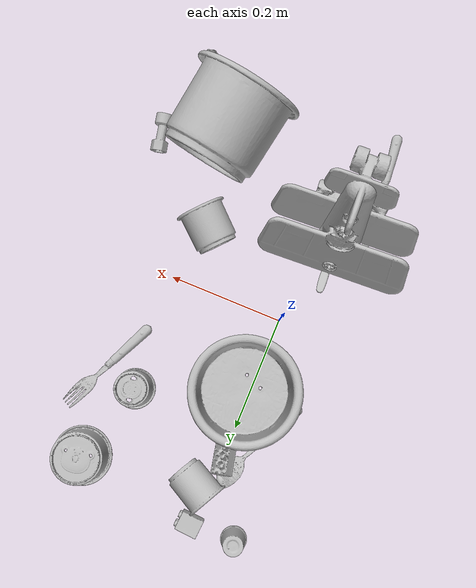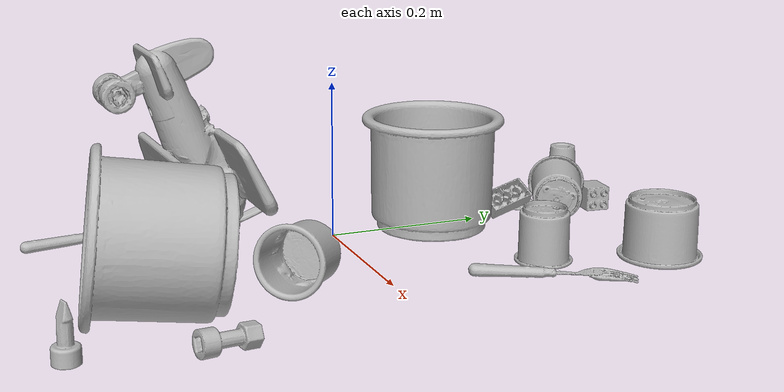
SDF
<sdf version="1.4">
  <world name="default">
    <light name="light1" type="point">
      <pose>0 0 1 0 0 0</pose>
      <diffuse>3 3 3 1</diffuse>
      <specular>3 3 3 1</specular>
    </light>
    <light name="light2" type="point">
      <pose>0 0.5 2 0 0 0</pose>
      <diffuse>1 1 1 1</diffuse>
      <specular>1 1 1 1</specular>
    </light>
    <light name="light3" type="point">
      <pose>0 0.5 2 0 0 0</pose>
      <diffuse>3 3 3 1</diffuse>
      <specular>3 3 3 1</specular>
    </light>
    <scene>
      <ambient>0.7 0.7 0.7</ambient>
    </scene>
    <model name="cup1">
      <link name="link_cup1">
        <collision name="default">
          <geometry>
            <mesh>
              <uri>model://d_cups/collision_meshes/collision.obj</uri>
              <scale>1.0 1.0 1.0</scale>
            </mesh>
          </geometry>
          <surface>
            <friction>
              <ode>
                <mu>0.5</mu>
                <mu2>0.5</mu2>
              </ode>
            </friction>
          <contact>
        <ode>
            <max_vel>0</max_vel>
            <min_depth>0.0001</min_depth>
            <kp>1e8</kp>
        </ode>
    </contact></surface>
        </collision>
        <visual name="default">
          <geometry>
            <mesh>
              <uri>model://d_cups/visual_meshes/visual.dae</uri>
              <scale>1.0 1.0 1.0</scale>
            </mesh>
          </geometry>
        </visual>
        <inertial>
          <mass>0.02583918906748295</mass>
          <pose>0.0008068039314821362 0.001911739120259881 -0.0022666507866233587 0.24011637128749466 -0.2471028358176743 0.5942765290496752</pose>
          <inertia>
            <ixx>2.1633481e-05</ixx>
            <iyy>2.1570875e-05</iyy>
            <izz>1.9581978e-05</izz>
            <ixy>0</ixy>
            <ixz>0</ixz>
            <iyz>0</iyz>
          </inertia>
        </inertial>
      </link>
      <pose>0.18557235598564148 0.20285873115062714 0.03448925167322159 -3.14157864653311 -5.3073362375117196e-05 2.3318231060792147</pose>
    </model>
    <model name="silverware1">
      <link name="link_silverware1">
        <collision name="default">
          <geometry>
            <mesh>
              <uri>model://fork/collision_meshes/collision.obj</uri>
              <scale>1.0 1.0 1.0</scale>
            </mesh>
          </geometry>
          <surface>
            <friction>
              <ode>
                <mu>0.5</mu>
                <mu2>0.5</mu2>
              </ode>
            </friction>
          <contact>
        <ode>
            <max_vel>0</max_vel>
            <min_depth>0.0001</min_depth>
            <kp>1e8</kp>
        </ode>
    </contact></surface>
        </collision>
        <visual name="default">
          <geometry>
            <mesh>
              <uri>model://fork/visual_meshes/visual.dae</uri>
              <scale>1.0 1.0 1.0</scale>
            </mesh>
          </geometry>
        </visual>
        <inertial>
          <mass>0.019409121945500374</mass>
          <pose>-0.02957003004848957 0.00046588227269239724 0.0003218860365450382 -0.013551247621251511 -0.010977829980421018 0.014453895491116085</pose>
          <inertia>
            <ixx>6.8039935e-07</ixx>
            <iyy>5.0671635e-05</iyy>
            <izz>5.097597e-05</izz>
            <ixy>0</ixy>
            <ixz>0</ixz>
            <iyz>0</iyz>
          </inertia>
        </inertial>
      </link>
      <pose>0.24384605884552002 0.18335309624671936 0.007446617353707552 -3.0635110475961302 0.0028356781565262055 1.13144977013834</pose>
    </model>
    <model name="cup2">
      <link name="link_cup2">
        <collision name="default">
          <geometry>
            <mesh>
              <uri>model://e_cups/collision_meshes/collision.obj</uri>
              <scale>1.0 1.0 1.0</scale>
            </mesh>
          </geometry>
          <surface>
            <friction>
              <ode>
                <mu>0.5</mu>
                <mu2>0.5</mu2>
              </ode>
            </friction>
          <contact>
        <ode>
            <max_vel>0</max_vel>
            <min_depth>0.0001</min_depth>
            <kp>1e8</kp>
        </ode>
    </contact></surface>
        </collision>
        <visual name="default">
          <geometry>
            <mesh>
              <uri>model://e_cups/visual_meshes/visual.dae</uri>
              <scale>1.0 1.0 1.0</scale>
            </mesh>
          </geometry>
        </visual>
        <inertial>
          <mass>0.044056184589862823</mass>
          <pose>0.0011355748865753412 0.0028797839768230915 -0.0038829699624329805 0.6952404811842238 0.0876797234541652 -0.5235249298074676</pose>
          <inertia>
            <ixx>3.8846523e-05</ixx>
            <iyy>4.060018e-05</iyy>
            <izz>3.714177e-05</izz>
            <ixy>0</ixy>
            <ixz>0</ixz>
            <iyz>0</iyz>
          </inertia>
        </inertial>
      </link>
      <pose>0.027495186775922775 0.3116854727268219 0.03501777723431587 -1.4673909279766877 0.6124945886056361 1.1472949279573734</pose>
    </model>
    <model name="silverware2">
      <link name="link_silverware2">
        <collision name="default">
          <geometry>
            <mesh>
              <uri>model://knife/collision_meshes/collision.obj</uri>
              <scale>1.0 1.0 1.0</scale>
            </mesh>
          </geometry>
          <surface>
            <friction>
              <ode>
                <mu>0.5</mu>
                <mu2>0.5</mu2>
              </ode>
            </friction>
          <contact>
        <ode>
            <max_vel>0</max_vel>
            <min_depth>0.0001</min_depth>
            <kp>1e8</kp>
        </ode>
    </contact></surface>
        </collision>
        <visual name="default">
          <geometry>
            <mesh>
              <uri>model://knife/visual_meshes/visual.dae</uri>
              <scale>1.0 1.0 1.0</scale>
            </mesh>
          </geometry>
        </visual>
        <inertial>
          <mass>0.018338654190301895</mass>
          <pose>-0.02378525212407112 0.00152751209679991 5.062017953605391e-05 0.07305878484845407 0.017248414361503102 -0.007409825003193847</pose>
          <inertia>
            <ixx>5.2052525e-07</ixx>
            <iyy>7.045415e-05</iyy>
            <izz>7.062178e-05</izz>
            <ixy>0</ixy>
            <ixz>0</ixz>
            <iyz>0</iyz>
          </inertia>
        </inertial>
      </link>
      <pose>-0.0800759568810463 -0.27602049708366394 0.007938220165669918 0.00021743765102707395 -0.01430731761300522 1.6516584159312562</pose>
    </model>
    <model name="cup3">
      <link name="link_cup3">
        <collision name="default">
          <geometry>
            <mesh>
              <uri>model://g_cups/collision_meshes/collision.obj</uri>
              <scale>1.0 1.0 1.0</scale>
            </mesh>
          </geometry>
          <surface>
            <friction>
              <ode>
                <mu>0.5</mu>
                <mu2>0.5</mu2>
              </ode>
            </friction>
          <contact>
        <ode>
            <max_vel>0</max_vel>
            <min_depth>0.0001</min_depth>
            <kp>1e8</kp>
        </ode>
    </contact></surface>
        </collision>
        <visual name="default">
          <geometry>
            <mesh>
              <uri>model://g_cups/visual_meshes/visual.dae</uri>
              <scale>1.0 1.0 1.0</scale>
            </mesh>
          </geometry>
        </visual>
        <inertial>
          <mass>0.07798270881175995</mass>
          <pose>-0.0007946274126879871 -4.206407902529463e-05 -0.0021329382434487343 -0.21383467808934026 -0.31409923984197585 0.31123390815877217</pose>
          <inertia>
            <ixx>9.102333e-05</ixx>
            <iyy>9.0713715e-05</iyy>
            <izz>9.428446e-05</izz>
            <ixy>0</ixy>
            <ixz>0</ixz>
            <iyz>0</iyz>
          </inertia>
        </inertial>
      </link>
      <pose>0.1720704287290573 -0.10146889090538025 0.039847973734140396 -0.926930100308389 -1.3959805256339557 -2.9369764718682223</pose>
    </model>
    <model name="silverware3">
      <link name="link_silverware3">
        <collision name="default">
          <geometry>
            <mesh>
              <uri>model://spoon/collision_meshes/collision.obj</uri>
              <scale>1.0 1.0 1.0</scale>
            </mesh>
          </geometry>
          <surface>
            <friction>
              <ode>
                <mu>0.5</mu>
                <mu2>0.5</mu2>
              </ode>
            </friction>
          <contact>
        <ode>
            <max_vel>0</max_vel>
            <min_depth>0.0001</min_depth>
            <kp>1e8</kp>
        </ode>
    </contact></surface>
        </collision>
        <visual name="default">
          <geometry>
            <mesh>
              <uri>model://spoon/visual_meshes/visual.dae</uri>
              <scale>1.0 1.0 1.0</scale>
            </mesh>
          </geometry>
        </visual>
        <inertial>
          <mass>0.03767607361078262</mass>
          <pose>-0.005526314023882151 -0.00160341733135283 -0.0007271650829352438 0.035216427360727776 -0.03906582911385382 0.006150613897789847</pose>
          <inertia>
            <ixx>2.095604e-06</ixx>
            <iyy>0.00014335623</iyy>
            <izz>0.00014438969</izz>
            <ixy>0</ixy>
            <ixz>0</ixz>
            <iyz>0</iyz>
          </inertia>
        </inertial>
      </link>
      <pose>-0.045604586601257324 0.21176858246326447 0.01020105741918087 -2.7054434123352773 -0.06142757108397865 1.1108958564037439</pose>
    </model>
    <model name="cup4">
      <link name="link_cup4">
        <collision name="default">
          <geometry>
            <mesh>
              <uri>model://i_cups/collision_meshes/collision.obj</uri>
              <scale>2.0 2.0 2.0</scale>
            </mesh>
          </geometry>
          <surface>
            <friction>
              <ode>
                <mu>0.5</mu>
                <mu2>0.5</mu2>
              </ode>
            </friction>
          <contact>
        <ode>
            <max_vel>0</max_vel>
            <min_depth>0.0001</min_depth>
            <kp>1e8</kp>
        </ode>
    </contact></surface>
        </collision>
        <visual name="default">
          <geometry>
            <mesh>
              <uri>model://i_cups/visual_meshes/visual.dae</uri>
              <scale>2.0 2.0 2.0</scale>
            </mesh>
          </geometry>
        </visual>
        <inertial>
          <mass>0.5538490414619446</mass>
          <pose>0.00022480632469523698 0.00033594807609915733 -0.0017158057307824492 -0.028982964625507153 -0.039873324075769 -0.3459146585522926</pose>
          <inertia>
            <ixx>0.003067248</ixx>
            <iyy>0.003094273</iyy>
            <izz>0.0034281453</izz>
            <ixy>0</ixy>
            <ixz>0</ixz>
            <iyz>0</iyz>
          </inertia>
        </inertial>
      </link>
      <pose>0.20771099627017975 -0.2708621919155121 0.08939981460571289 1.446382776142131 -0.08482862671235127 -0.16279923762872991</pose>
    </model>
    <model name="cup41">
      <link name="link_cup41">
        <collision name="default">
          <geometry>
            <mesh>
              <uri>model://cup_small/collision_meshes/collision.obj</uri>
              <scale>1.0 1.0 1.0</scale>
            </mesh>
          </geometry>
          <surface>
            <friction>
              <ode>
                <mu>0.5</mu>
                <mu2>0.5</mu2>
              </ode>
            </friction>
          <contact>
        <ode>
            <max_vel>0</max_vel>
            <min_depth>0.0001</min_depth>
            <kp>1e8</kp>
        </ode>
    </contact></surface>
        </collision>
        <visual name="default">
          <geometry>
            <mesh>
              <uri>model://cup_small/visual_meshes/visual.dae</uri>
              <scale>1.0 1.0 1.0</scale>
            </mesh>
          </geometry>
        </visual>
        <inertial>
          <mass>0.014494861476123333</mass>
          <pose>0.000104824714071583 -0.0003377838584128767 -0.010742826387286186 -0.01149312034772668 -0.015280288652376739 -0.5058210166411498</pose>
          <inertia>
            <ixx>8.534352e-06</ixx>
            <iyy>8.578376e-06</iyy>
            <izz>3.853286e-06</izz>
            <ixy>0</ixy>
            <ixz>0</ixz>
            <iyz>0</iyz>
          </inertia>
        </inertial>
      </link>
      <pose>-0.06762420386075974 0.37478873133659363 0.03469981998205185 -3.132454021447195 0.008638533629744923 0.8562602707914495</pose>
    </model>
    <model name="cup5">
      <link name="link_cup5">
        <collision name="default">
          <geometry>
            <mesh>
              <uri>model://h_cups/collision_meshes/collision.obj</uri>
              <scale>2.0 2.0 2.0</scale>
            </mesh>
          </geometry>
          <surface>
            <friction>
              <ode>
                <mu>0.5</mu>
                <mu2>0.5</mu2>
              </ode>
            </friction>
          <contact>
        <ode>
            <max_vel>0</max_vel>
            <min_depth>0.0001</min_depth>
            <kp>1e8</kp>
        </ode>
    </contact></surface>
        </collision>
        <visual name="default">
          <geometry>
            <mesh>
              <uri>model://h_cups/visual_meshes/visual.dae</uri>
              <scale>2.0 2.0 2.0</scale>
            </mesh>
          </geometry>
        </visual>
        <inertial>
          <mass>0.5365790128707886</mass>
          <pose>-5.406028139987029e-05 0.00046037189895287156 -0.0036810787860304117 -0.02436222281077587 0.06545240855648493 0.12885003891433794</pose>
          <inertia>
            <ixx>0.002771868</ixx>
            <iyy>0.0027387904</iyy>
            <izz>0.0029069292</izz>
            <ixy>0</ixy>
            <ixz>0</ixz>
            <iyz>0</iyz>
          </inertia>
        </inertial>
      </link>
      <pose>0.009427346289157867 0.13457763195037842 0.07551602274179459 3.892067961458214e-08 2.8091097262607674e-08 1.0941952364936747</pose>
    </model>
    <model name="cup51">
      <link name="link_cup51">
        <collision name="default">
          <geometry>
            <mesh>
              <uri>model://j_cups/collision_meshes/collision.obj</uri>
              <scale>1.0 1.0 1.0</scale>
            </mesh>
          </geometry>
          <surface>
            <friction>
              <ode>
                <mu>0.5</mu>
                <mu2>0.5</mu2>
              </ode>
            </friction>
          <contact>
        <ode>
            <max_vel>0</max_vel>
            <min_depth>0.0001</min_depth>
            <kp>1e8</kp>
        </ode>
    </contact></surface>
        </collision>
        <visual name="default">
          <geometry>
            <mesh>
              <uri>model://j_cups/visual_meshes/visual.dae</uri>
              <scale>1.0 1.0 1.0</scale>
            </mesh>
          </geometry>
        </visual>
        <inertial>
          <mass>0.08643309026956558</mass>
          <pose>0.0006164878141134977 0.000539897009730339 -0.0013479007175192237 0.030303582878034346 0.03757999590477698 0.4386876701083768</pose>
          <inertia>
            <ixx>0.00012691108</ixx>
            <iyy>0.00012823076</iyy>
            <izz>0.00014630218</izz>
            <ixy>0</ixy>
            <ixz>0</ixz>
            <iyz>0</iyz>
          </inertia>
        </inertial>
      </link>
      <pose>0.22493599355220795 0.34187954664230347 0.03799771890044212 -3.139863799828649 0.006373398312000867 3.1191541639557627</pose>
    </model>
    <model name="toy1">
      <link name="link_toy1">
        <collision name="default">
          <geometry>
            <mesh>
              <uri>model://f_lego_duplo/collision_meshes/collision.obj</uri>
              <scale>1.0 1.0 1.0</scale>
            </mesh>
          </geometry>
          <surface>
            <friction>
              <ode>
                <mu>0.5</mu>
                <mu2>0.5</mu2>
              </ode>
            </friction>
          <contact>
        <ode>
            <max_vel>0</max_vel>
            <min_depth>0.0001</min_depth>
            <kp>1e8</kp>
        </ode>
    </contact></surface>
        </collision>
        <visual name="default">
          <geometry>
            <mesh>
              <uri>model://f_lego_duplo/visual_meshes/visual.dae</uri>
              <scale>1.0 1.0 1.0</scale>
            </mesh>
          </geometry>
        </visual>
        <inertial>
          <mass>0.03726755082607269</mass>
          <pose>2.3694148694630712e-05 0.00013393144763540477 0.0018837880343198776 0.029838475432906467 -0.014425202105620092 -0.6756589304715467</pose>
          <inertia>
            <ixx>7.874838e-06</ixx>
            <iyy>7.944995e-06</iyy>
            <izz>6.8356926e-06</izz>
            <ixy>0</ixy>
            <ixz>0</ixz>
            <iyz>0</iyz>
          </inertia>
        </inertial>
      </link>
      <pose>0.013236578553915024 0.37692344188690186 0.01621934212744236 1.571148380422007 0.010115817126105596 1.498710640501343</pose>
    </model>
    <model name="toy2">
      <link name="link_toy2">
        <collision name="default">
          <geometry>
            <mesh>
              <uri>model://a_toy_airplane/collision_meshes/collision.obj</uri>
              <scale>1.0 1.0 1.0</scale>
            </mesh>
          </geometry>
          <surface>
            <friction>
              <ode>
                <mu>0.5</mu>
                <mu2>0.5</mu2>
              </ode>
            </friction>
          <contact>
        <ode>
            <max_vel>0</max_vel>
            <min_depth>0.0001</min_depth>
            <kp>1e8</kp>
        </ode>
    </contact></surface>
        </collision>
        <visual name="default">
          <geometry>
            <mesh>
              <uri>model://a_toy_airplane/visual_meshes/visual.dae</uri>
              <scale>1.0 1.0 1.0</scale>
            </mesh>
          </geometry>
        </visual>
        <inertial>
          <mass>2.8230273723602295</mass>
          <pose>0.025165094062685966 -0.003707324154675007 -0.0011962448479607701 -0.012016973205606891 -0.14663498091084715 0.004149146833454428</pose>
          <inertia>
            <ixx>0.010251767</ixx>
            <iyy>0.014938904</iyy>
            <izz>0.017491622</izz>
            <ixy>0</ixy>
            <ixz>0</ixz>
            <iyz>0</iyz>
          </inertia>
        </inertial>
      </link>
      <pose>-0.042613279074430466 -0.17837771773338318 0.12818025052547455 -0.025113096978344577 1.3802916144324113 1.5960072488597181</pose>
    </model>
    <model name="toy3">
      <link name="link_toy3">
        <collision name="default">
          <geometry>
            <mesh>
              <uri>model://e_toy_airplane/collision_meshes/collision.obj</uri>
              <scale>1.0 1.0 1.0</scale>
            </mesh>
          </geometry>
          <surface>
            <friction>
              <ode>
                <mu>0.5</mu>
                <mu2>0.5</mu2>
              </ode>
            </friction>
          <contact>
        <ode>
            <max_vel>0</max_vel>
            <min_depth>0.0001</min_depth>
            <kp>1e8</kp>
        </ode>
    </contact></surface>
        </collision>
        <visual name="default">
          <geometry>
            <mesh>
              <uri>model://e_toy_airplane/visual_meshes/visual.dae</uri>
              <scale>1.0 1.0 1.0</scale>
            </mesh>
          </geometry>
        </visual>
        <inertial>
          <mass>0.018226178362965584</mass>
          <pose>0.00011740501213353127 -2.2482903659692965e-05 -0.011187204159796238 0.005518473613481416 0.009228340672948143 0.1504115676354622</pose>
          <inertia>
            <ixx>5.5628384e-06</ixx>
            <iyy>5.505933e-06</iyy>
            <izz>1.6718515e-06</izz>
            <ixy>0</ixy>
            <ixz>0</ixz>
            <iyz>0</iyz>
          </inertia>
        </inertial>
      </link>
      <pose>0.28322479128837585 -0.38197124004364014 0.033212147653102875 -0.00014384814504068814 -0.0006797695059804011 1.764814248521793</pose>
    </model>
    <model name="toy4">
      <link name="link_toy4">
        <collision name="default">
          <geometry>
            <mesh>
              <uri>model://c_toy_airplane/collision_meshes/collision.obj</uri>
              <scale>1.0 1.0 1.0</scale>
            </mesh>
          </geometry>
          <surface>
            <friction>
              <ode>
                <mu>0.5</mu>
                <mu2>0.5</mu2>
              </ode>
            </friction>
          <contact>
        <ode>
            <max_vel>0</max_vel>
            <min_depth>0.0001</min_depth>
            <kp>1e8</kp>
        </ode>
    </contact></surface>
        </collision>
        <visual name="default">
          <geometry>
            <mesh>
              <uri>model://c_toy_airplane/visual_meshes/visual.dae</uri>
              <scale>1.0 1.0 1.0</scale>
            </mesh>
          </geometry>
        </visual>
        <inertial>
          <mass>0.025432955473661423</mass>
          <pose>-0.00023024249821901321 -4.429159048413567e-07 -0.006080531049519777 -0.006192114712999555 -0.016797950833505656 0.7654545807195076</pose>
          <inertia>
            <ixx>1.1678292e-05</ixx>
            <iyy>1.1645335e-05</iyy>
            <izz>2.7418316e-06</izz>
            <ixy>0</ixy>
            <ixz>0</ixz>
            <iyz>0</iyz>
          </inertia>
        </inertial>
      </link>
      <pose>0.3142484128475189 -0.22711427509784698 0.014696149155497551 1.6174523886360346 -0.3128400025168332 -2.9494100110428265</pose>
    </model>
    <model name="toy5">
      <link name="link_toy5">
        <collision name="default">
          <geometry>
            <mesh>
              <uri>model://c_lego_duplo/collision_meshes/collision.obj</uri>
              <scale>1.0 1.0 1.0</scale>
            </mesh>
          </geometry>
          <surface>
            <friction>
              <ode>
                <mu>0.5</mu>
                <mu2>0.5</mu2>
              </ode>
            </friction>
          <contact>
        <ode>
            <max_vel>0</max_vel>
            <min_depth>0.0001</min_depth>
            <kp>1e8</kp>
        </ode>
    </contact></surface>
        </collision>
        <visual name="default">
          <geometry>
            <mesh>
              <uri>model://c_lego_duplo/visual_meshes/visual.dae</uri>
              <scale>1.0 1.0 1.0</scale>
            </mesh>
          </geometry>
        </visual>
        <inertial>
          <mass>0.03308485820889473</mass>
          <pose>0.00031645988929085433 0.00019464598153717816 0.0010453154100105166 -0.011520788894510418 0.005900092683279709 0.031100331745055027</pose>
          <inertia>
            <ixx>1.2731672e-05</ixx>
            <iyy>4.066954e-06</iyy>
            <izz>1.4878268e-05</izz>
            <ixy>0</ixy>
            <ixz>0</ixz>
            <iyz>0</iyz>
          </inertia>
        </inertial>
      </link>
      <pose>-0.0013923875521868467 0.24969621002674103 0.021441716700792313 -2.8789715561679023 0.5910798676740047 0.3766340991384958</pose>
    </model>
  <physics type="ode">
      <max_contacts>50</max_contacts>
      <ode>
        <solver>
          <type>quick</type>
          <iters>75</iters>
        </solver>
        <constraints>
          <contact_max_correcting_vel>0</contact_max_correcting_vel>
          <contact_surface_layer>0</contact_surface_layer>
        </constraints>
      </ode>
    </physics></world>
</sdf>
